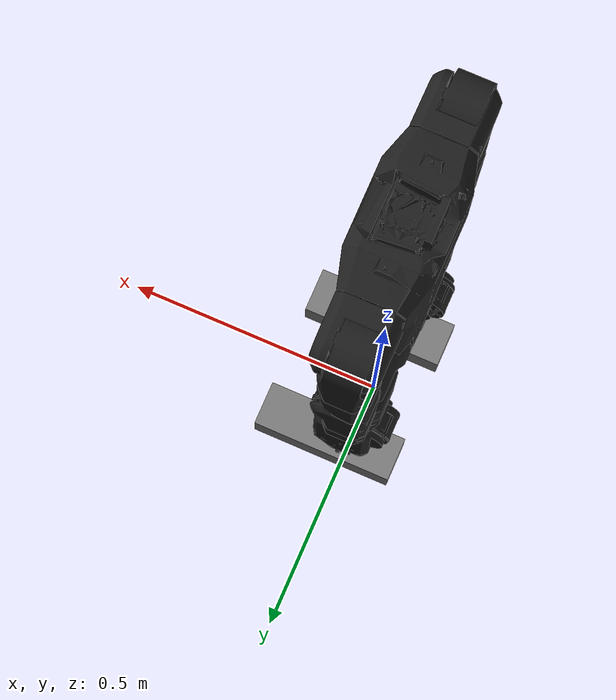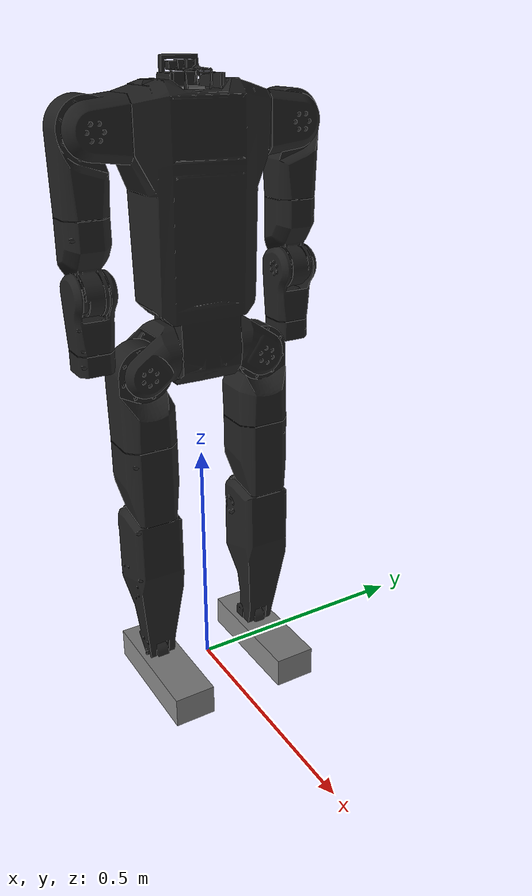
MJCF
<mujoco model="assy_forurdf">
  <default>
    <default class="robot">
      <default class="robstride_03">
        <joint armature="0.02" frictionloss="0.2" actuatorfrcrange="-60.0 60.0" />
        <motor ctrlrange="-60.0 60.0" />
      </default>
      <default class="robstride_02">
        <joint armature="0.0042" frictionloss="0.1" actuatorfrcrange="-17.0 17.0" />
        <motor ctrlrange="-17.0 17.0" />
      </default>
      <default class="robstride_04">
        <joint armature="0.04" frictionloss="0.2" actuatorfrcrange="-120.0 120.0" />
        <motor ctrlrange="-120.0 120.0" />
      </default>
      <default class="robstride_00">
        <joint armature="0.001" frictionloss="0.1" actuatorfrcrange="-14.0 14.0" />
        <motor ctrlrange="-14.0 14.0" />
      </default>
      <default class="visual">
        <geom material="visualgeom" contype="0" conaffinity="0" group="2" />
      </default>
      <default class="collision">
        <geom material="collision_material" condim="3" contype="0" conaffinity="1" priority="1" group="1" solref="0.02 0.8" solimp="0.98 0.99 0.1" friction="0.64 0.02 0.01" />
      </default>
    </default>
    <mesh maxhullvert="64" />
  </default>

  <compiler angle="radian" />

  <asset>
    <material name="green_material" rgba="0 1 0 1" />
    <material name="base_material" rgba="1 0 0 1" />
    <material name="torso_material" rgba="0.121569 0.121569 0.121569 1" />
    <material name="imu_material" rgba="0.498039 0.498039 0.498039 1" />
    <material name="default_material" rgba="0.7 0.7 0.7 1" />
    <material name="collision_material" rgba="1.0 0.28 0.1 0.9" />
    <mesh name="torso.stl" file="meshes/KD_D_101L_L_Hip_Static.stl" />
    <mesh name="KD_D_102L_L_Hip_Yoke_Drive.stl" file="meshes/KD_D_102L_L_Hip_Yoke_Drive.stl" />
    <mesh name="L_Hip_Roll_RS03.stl" file="meshes/L_Hip_Roll_RS03.stl" />
    <mesh name="KD_D_301L_L_Femur_Lower_Drive.stl" file="meshes/KD_D_301L_L_Femur_Lower_Drive.stl" />
    <mesh name="KD_D_401L_L_Shin_Drive.stl" file="meshes/KD_D_401L_L_Shin_Drive.stl" />
    <mesh name="LFootBushing_GPF_1517_12_collision.stl" file="meshes/LFootBushing_GPF_1517_12_collision.stl" />
    <mesh name="LFootBushing_GPF_1517_12.stl" file="meshes/LFootBushing_GPF_1517_12.stl" />
    <mesh name="KD_D_102R.stl" file="meshes/KD_D_102R.stl" />
    <mesh name="L_Hip_Roll_RS03_2.stl" file="meshes/L_Hip_Roll_RS03_2.stl" />
    <mesh name="KD_D_301R.stl" file="meshes/KD_D_301R.stl" />
    <mesh name="KD_D_401R.stl" file="meshes/KD_D_401R.stl" />
    <mesh name="RFootBushing_GPF_1517_12_collision.stl" file="meshes/RFootBushing_GPF_1517_12_collision.stl" />
    <mesh name="RFootBushing_GPF_1517_12.stl" file="meshes/RFootBushing_GPF_1517_12.stl" />
    <mesh name="KC_C_101R_ShldYokeDrive.stl" file="meshes/KC_C_101R_ShldYokeDrive.stl" />
    <mesh name="RS03_3.stl" file="meshes/RS03_3.stl" />
    <mesh name="KC_C_202R.stl" file="meshes/KC_C_202R.stl" />
    <mesh name="KC_C_401R_R_UpForearmDrive.stl" file="meshes/KC_C_401R_R_UpForearmDrive.stl" />
    <mesh name="PRT0001.stl" file="meshes/PRT0001.stl" />
    <mesh name="KD_C_101L_ShldYokeDrive.stl" file="meshes/KD_C_101L_ShldYokeDrive.stl" />
    <mesh name="RS03_4.stl" file="meshes/RS03_4.stl" />
    <mesh name="KD_C_301L_LowerBicepDrive.stl" file="meshes/KD_C_301L_LowerBicepDrive.stl" />
    <mesh name="KC_C_401L_Up_Forearm_Drive.stl" file="meshes/KC_C_401L_Up_Forearm_Drive.stl" />
    <mesh name="PRT0001_2.stl" file="meshes/PRT0001_2.stl" />
    <mesh name="imu.stl" file="meshes/imu.stl" />
  </asset>

  <worldbody>
    <body name="base" pos="0.00000000 0.00000000 0.76264403" quat="1 0 0 0" childclass="robot">
      <freejoint name="floating_base" />
      <geom name="base_visual" pos="0 0 0" quat="0.7071054825112363 0.0 0.0 0.7071080798594735" material="base_material" type="sphere" size="0.01" class="visual" />
      <!-- the torso origin out of the onshape to urdf exporter is wrong so we must fix it manually -->
      <body name="torso" pos="0 0.025888 0" quat="0.7071054825112363 0.0 0.0 0.7071080798594735">
        <geom name="torso_origin" pos="0 0 0" quat="1 0 0 0" class="visual" type="sphere" size="0.01" material="green_material" />
        <inertial pos="-0.025920 0.003286 0.170540" quat="1.0 0.0 0.0 0.0" mass="12.606875" diaginertia="0.369404 0.398554 0.05807" />
        <geom name="torso_visual" pos="0 0 0" quat="1.0 0.0 0.0 0.0" material="torso_material" type="mesh" mesh="torso.stl" class="visual" />
        <body name="KD_D_102L_L_Hip_Yoke_Drive" pos="0.030112 0.000852 -0.027644" quat="0.5000001633974483 -0.4999999999999733 -0.49999983660255165 0.4999999999999733">
          <joint name="dof_left_hip_pitch_04" type="hinge" ref="0.0" class="robstride_04" range="-1.047198 2.216568" axis="0 0 1" />
          <inertial pos="-0.004258 0.005667 -0.040380" quat="1.0 0.0 0.0 0.0" mass="0.550354" diaginertia="0.00093 0.001251 0.001328" />
          <geom name="KD_D_102L_L_Hip_Yoke_Drive_visual" pos="0 0 0" quat="1.0 0.0 0.0 0.0" material="torso_material" type="mesh" mesh="KD_D_102L_L_Hip_Yoke_Drive.stl" class="visual" />
          <body name="L_Hip_Roll_RS03" pos="-0.028250 0.030000 -0.071000" quat="-1.2247452309842457e-07 0.7071068967259713 1.22474483074382e-07 0.7071066656470838">
            <joint name="dof_left_hip_roll_03" type="hinge" ref="0.0" class="robstride_03" range="-0.209440 2.268928" axis="0 0 -1" />
            <inertial pos="-0.000136 -0.059376 0.026066" quat="1.0 0.0 0.0 0.0" mass="2.396969" diaginertia="0.01035 0.003224 0.010755" />
            <geom name="L_Hip_Roll_RS03_visual" pos="0 0 0" quat="1.0 0.0 0.0 0.0" material="torso_material" type="mesh" mesh="L_Hip_Roll_RS03.stl" class="visual" />
            <body name="KD_D_301L_L_Femur_Lower_Drive" pos="0 -0.143000 0.025250" quat="-1.2247452309842457e-07 -1.22474483074382e-07 -0.7071066656470838 -0.7071068967259713">
              <joint name="dof_left_hip_yaw_03" type="hinge" ref="0.0" class="robstride_03" range="-1.570796 1.570796" axis="0 0 1" />
              <inertial pos="0.001576 0.013392 -0.172799" quat="1.0 0.0 0.0 0.0" mass="2.349254" diaginertia="0.015361 0.013924 0.004011" />
              <geom name="KD_D_301L_L_Femur_Lower_Drive_visual" pos="0 0 0" quat="1.0 0.0 0.0 0.0" material="torso_material" type="mesh" mesh="KD_D_301L_L_Femur_Lower_Drive.stl" class="visual" />
              <body name="KD_D_401L_L_Shin_Drive" pos="-0.021000 0.021000 -0.212000" quat="0.5000001633974483 0.4999999999999733 0.49999983660255165 0.4999999999999733">
                <joint name="dof_left_knee_04" type="hinge" ref="0.0" class="robstride_04" range="0 2.705260" axis="0 0 1" />
                <inertial pos="-0.024116 -0.104308 0.018559" quat="1.0 0.0 0.0 0.0" mass="1.684707" diaginertia="0.014785 0.002991 0.014664" />
                <geom name="KD_D_401L_L_Shin_Drive_visual" pos="0 0 0" quat="1.0 0.0 0.0 0.0" material="torso_material" type="mesh" mesh="KD_D_401L_L_Shin_Drive.stl" class="visual" />
                <body name="LFootBushing_GPF_1517_12" pos="-0.030000 -0.290000 0.000950" quat="-1.7320510330969933e-07 0.999999999999985 0.0 -0.0">
                  <joint name="dof_left_ankle_02" type="hinge" ref="0.0" class="robstride_02" range="-1.134464 0.261799" axis="0 0 -1" />
                  <inertial pos="-0.016549 0.031142 -0.012943" quat="1.0 0.0 0.0 0.0" mass="0.608966" diaginertia="0.000377 0.00194 0.001893" />
                  <geom name="LFootBushing_GPF_1517_12_visual" pos="0 0 0" quat="1.0 0.0 0.0 0.0" material="torso_material" type="mesh" mesh="LFootBushing_GPF_1517_12.stl" class="visual" />
                  <geom name="LFootBushing_GPF_1517_12_collision_capsule_0" type="capsule" quat="1.000000 0.000000 0.000000 0.000000" fromto="-0.1017 0.038000 -0.030886 0.055821 0.038000 -0.030886" size="0.020000" material="collision_material" class="collision" />
                  <geom name="LFootBushing_GPF_1517_12_visual_capsule_0" type="capsule" quat="1.000000 0.000000 0.000000 0.000000" fromto="-0.1017 0.038000 -0.030886 0.055821 0.038000 -0.030886" size="0.020000" material="torso_material" class="visual" />
                  <geom name="LFootBushing_GPF_1517_12_collision_capsule_1" type="capsule" quat="1.000000 0.000000 0.000000 0.000000" fromto="-0.1127 0.038000 0.000954 0.055821 0.038000 0.000954" size="0.020000" material="collision_material" class="collision" />
                  <geom name="LFootBushing_GPF_1517_12_visual_capsule_1" type="capsule" quat="1.000000 0.000000 0.000000 0.000000" fromto="-0.1127 0.038000 0.000954 0.055821 0.038000 0.000954" size="0.020000" material="torso_material" class="visual" />
                  <site name="left_foot" size="0.138 0.032 0.043" pos="-0.0290 0.038 -0.0150" type="box" />
                </body>
              </body>
            </body>
          </body>
        </body>
        <body name="KD_D_102R" pos="-0.081888 0.000852 -0.027644" quat="0.5000001633974483 0.4999999999999733 0.49999983660255165 0.4999999999999733">
          <joint name="dof_right_hip_pitch_04" type="hinge" ref="0.0" class="robstride_04" range="-2.216568 1.047198" axis="0 0 1" />
          <inertial pos="-0.004258 -0.005667 -0.040379" quat="1.0 0.0 0.0 0.0" mass="0.550361" diaginertia="0.00093 0.001251 0.001328" />
          <geom name="KD_D_102R_visual" pos="0 0 0" quat="1.0 0.0 0.0 0.0" material="torso_material" type="mesh" mesh="KD_D_102R.stl" class="visual" />
          <body name="L_Hip_Roll_RS03_2" pos="-0.028250 -0.030000 -0.071000" quat="0.7071068967259818 0.0 -0.7071066656470943 0.0">
            <joint name="dof_right_hip_roll_03" type="hinge" ref="0.0" class="robstride_03" range="-2.268928 0.209440" axis="0 0 1" />
            <inertial pos="-0.000137 -0.059376 -0.026067" quat="1.0 0.0 0.0 0.0" mass="2.396917" diaginertia="0.01035 0.003224 0.010755" />
            <geom name="L_Hip_Roll_RS03_2_visual" pos="0 0 0" quat="1.0 0.0 0.0 0.0" material="torso_material" type="mesh" mesh="L_Hip_Roll_RS03_2.stl" class="visual" />
            <body name="KD_D_301R" pos="0 -0.143000 -0.025250" quat="0.7071068967259818 -0.7071066656470943 0.0 0.0">
              <joint name="dof_right_hip_yaw_03" type="hinge" ref="0.0" class="robstride_03" range="-1.570796 1.570796" axis="0 0 1" />
              <inertial pos="-0.001577 0.013392 -0.172799" quat="1.0 0.0 0.0 0.0" mass="2.349261" diaginertia="0.015362 0.013924 0.004011" />
              <geom name="KD_D_301R_visual" pos="0 0 0" quat="1.0 0.0 0.0 0.0" material="torso_material" type="mesh" mesh="KD_D_301R.stl" class="visual" />
              <body name="KD_D_401R" pos="0.021000 0.021000 -0.212000" quat="0.5000001633974483 0.4999999999999733 0.49999983660255165 0.4999999999999733">
                <joint name="dof_right_knee_04" type="hinge" ref="0.0" class="robstride_04" range="-2.705260 0" axis="0 0 -1" />
                <inertial pos="-0.024117 -0.104310 -0.018558" quat="1.0 0.0 0.0 0.0" mass="1.684717" diaginertia="0.014785 0.002991 0.014664" />
                <geom name="KD_D_401R_visual" pos="0 0 0" quat="1.0 0.0 0.0 0.0" material="torso_material" type="mesh" mesh="KD_D_401R.stl" class="visual" />
                <body name="RFootBushing_GPF_1517_12" pos="-0.030000 -0.290000 -0.000950" quat="1.0 0.0 0.0 0.0">
                  <joint name="dof_right_ankle_02" type="hinge" ref="0.0" class="robstride_02" range="-0.261799 1.134464" axis="0 0 -1" />
                  <inertial pos="-0.016546 -0.031136 -0.012942" quat="1.0 0.0 0.0 0.0" mass="0.608742" diaginertia="0.000377 0.001939 0.001892" />
                  <geom name="RFootBushing_GPF_1517_12_visual" pos="0 0 0" quat="1.0 0.0 0.0 0.0" material="torso_material" type="mesh" mesh="RFootBushing_GPF_1517_12.stl" class="visual" />
                  <geom name="RFootBushing_GPF_1517_12_collision_capsule_0" type="capsule" quat="1.000000 0.000000 0.000000 0.000000" fromto="-0.1017 -0.038000 -0.030886 0.055821 -0.038000 -0.030886" size="0.020000" material="collision_material" class="collision" />
                  <geom name="RFootBushing_GPF_1517_12_visual_capsule_0" type="capsule" quat="1.000000 0.000000 0.000000 0.000000" fromto="-0.1017 -0.038000 -0.030886 0.055821 -0.038000 -0.030886" size="0.020000" material="torso_material" class="visual" />
                  <geom name="RFootBushing_GPF_1517_12_collision_capsule_1" type="capsule" quat="1.000000 0.000000 0.000000 0.000000" fromto="-0.1127 -0.038000 0.000954 0.055821 -0.038000 0.000954" size="0.020000" material="collision_material" class="collision" />
                  <geom name="RFootBushing_GPF_1517_12_visual_capsule_1" type="capsule" quat="1.000000 0.000000 0.000000 0.000000" fromto="-0.1127 -0.038000 0.000954 0.055821 -0.038000 0.000954" size="0.020000" material="torso_material" class="visual" />
                  <site name="right_foot" size="0.138 0.032 0.043" pos="-0.0290 -0.038 -0.0150" type="box" />
                </body>
              </body>
            </body>
          </body>
        </body>
        <body name="KC_C_101R_ShldYokeDrive" pos="-0.146888 0.000852 0.382856" quat="0.7071068967259818 0.0 -0.7071066656470943 0.0">
          <joint name="dof_right_shoulder_pitch_03" type="hinge" ref="0.0" class="robstride_03" range="-3.490658 1.047198" axis="0 0 -1" />
          <inertial pos="0.003158 -0.007737 0.047375" quat="1.0 0.0 0.0 0.0" mass="0.569870" diaginertia="0.001409 0.001159 0.001309" />
          <geom name="KC_C_101R_ShldYokeDrive_visual" pos="0 0 0" quat="1.0 0.0 0.0 0.0" material="torso_material" type="mesh" mesh="KC_C_101R_ShldYokeDrive.stl" class="visual" />
          <body name="RS03_3" pos="0 -0.024250 0.080000" quat="0.5000001633974483 0.4999999999999733 0.4999999999999733 -0.49999983660255165">
            <joint name="dof_right_shoulder_roll_03" type="hinge" ref="0.0" class="robstride_03" range="-1.658063 0.436332" axis="0 0 1" />
            <inertial pos="-0.004909 -0.041175 -0.029409" quat="1.0 0.0 0.0 0.0" mass="1.789232" diaginertia="0.007176 0.001972 0.007602" />
            <geom name="RS03_3_visual" pos="0 0 0" quat="1.0 0.0 0.0 0.0" material="torso_material" type="mesh" mesh="RS03_3.stl" class="visual" />
            <body name="KC_C_202R" pos="-0.013000 -0.142500 -0.031670" quat="0.7071068967259818 -0.7071066656470943 0.0 0.0">
              <joint name="dof_right_shoulder_yaw_02" type="hinge" ref="0.0" class="robstride_02" range="-1.671886 1.671886" axis="0 0 1" />
              <inertial pos="0.003135 -0.003955 -0.099599" quat="1.0 0.0 0.0 0.0" mass="0.753224" diaginertia="0.002457 0.002305 0.000727" />
              <geom name="KC_C_202R_visual" pos="0 0 0" quat="1.0 0.0 0.0 0.0" material="torso_material" type="mesh" mesh="KC_C_202R.stl" class="visual" />
              <body name="KC_C_401R_R_UpForearmDrive" pos="0.019000 -0.010000 -0.137000" quat="0.5000001633974483 -0.4999999999999733 -0.49999983660255165 0.4999999999999733">
                <joint name="dof_right_elbow_02" type="hinge" ref="0.0" class="robstride_02" range="0 2.478368" axis="0 0 1" />
                <inertial pos="0.015853 0.061198 0.015613" quat="1.0 0.0 0.0 0.0" mass="0.641859" diaginertia="0.001302 0.000701 0.001278" />
                <geom name="KC_C_401R_R_UpForearmDrive_visual" pos="0 0 0" quat="1.0 0.0 0.0 0.0" material="torso_material" type="mesh" mesh="KC_C_401R_R_UpForearmDrive.stl" class="visual" />
                <body name="PRT0001" pos="0.017350 0.103000 0.018000" quat="0.5000001633974483 -0.4999999999999733 0.4999999999999733 0.49999983660255165">
                  <joint name="dof_right_wrist_00" type="hinge" ref="0.0" class="robstride_00" range="-1.378810 1.378810" axis="0 0 -1" />
                  <inertial pos="0.000357 0.000031 0.027390" quat="1.0 0.0 0.0 0.0" mass="0.462356" diaginertia="0.000274 0.000266 0.000406" />
                  <geom name="PRT0001_visual" pos="0 0 0" quat="1.0 0.0 0.0 0.0" material="torso_material" type="mesh" mesh="PRT0001.stl" class="visual" />
                </body>
              </body>
            </body>
          </body>
        </body>
        <body name="KD_C_101L_ShldYokeDrive" pos="0.095112 0.000852 0.382856" quat="0.7071068967259818 0.0 0.7071066656470943 0.0">
          <joint name="dof_left_shoulder_pitch_03" type="hinge" ref="0.0" class="robstride_03" range="-1.047198 3.490658" axis="0 0 -1" />
          <inertial pos="-0.003158 -0.007737 0.047374" quat="1.0 0.0 0.0 0.0" mass="0.569863" diaginertia="0.001409 0.001159 0.001309" />
          <geom name="KD_C_101L_ShldYokeDrive_visual" pos="0 0 0" quat="1.0 0.0 0.0 0.0" material="torso_material" type="mesh" mesh="KD_C_101L_ShldYokeDrive.stl" class="visual" />
          <body name="RS03_4" pos="0 -0.024250 0.080000" quat="0.5000001633974483 0.4999999999999733 -0.4999999999999733 0.49999983660255165">
            <joint name="dof_left_shoulder_roll_03" type="hinge" ref="0.0" class="robstride_03" range="-0.436332 1.658063" axis="0 0 1" />
            <inertial pos="0.004876 -0.041173 -0.029352" quat="1.0 0.0 0.0 0.0" mass="1.789191" diaginertia="0.007175 0.001972 0.007602" />
            <geom name="RS03_4_visual" pos="0 0 0" quat="1.0 0.0 0.0 0.0" material="torso_material" type="mesh" mesh="RS03_4.stl" class="visual" />
            <body name="KD_C_301L_LowerBicepDrive" pos="0.013000 -0.142500 -0.030750" quat="0.7071068967259818 -0.7071066656470943 0.0 0.0">
              <joint name="dof_left_shoulder_yaw_02" type="hinge" ref="0.0" class="robstride_02" range="-1.671886 1.671886" axis="0 0 1" />
              <inertial pos="0.000333 -0.002948 -0.095705" quat="1.0 0.0 0.0 0.0" mass="0.866827" diaginertia="0.002953 0.002777 0.000923" />
              <geom name="KD_C_301L_LowerBicepDrive_visual" pos="0 0 0" quat="1.0 0.0 0.0 0.0" material="torso_material" type="mesh" mesh="KD_C_301L_LowerBicepDrive.stl" class="visual" />
              <body name="KC_C_401L_Up_Forearm_Drive" pos="-0.019000 -0.010000 -0.137000" quat="0.5000001633974483 0.4999999999999733 0.49999983660255165 0.4999999999999733">
                <joint name="dof_left_elbow_02" type="hinge" ref="0.0" class="robstride_02" range="-2.478368 0" axis="0 0 1" />
                <inertial pos="0.015853 -0.061197 0.015921" quat="1.0 0.0 0.0 0.0" mass="0.641873" diaginertia="0.001303 0.000701 0.001278" />
                <geom name="KC_C_401L_Up_Forearm_Drive_visual" pos="0 0 0" quat="1.0 0.0 0.0 0.0" material="torso_material" type="mesh" mesh="KC_C_401L_Up_Forearm_Drive.stl" class="visual" />
                <body name="PRT0001_2" pos="0.017350 -0.103000 0.018000" quat="0.5000001633974483 0.4999999999999733 -0.4999999999999733 0.49999983660255165">
                  <joint name="dof_left_wrist_00" type="hinge" ref="0.0" class="robstride_00" range="-1.378810 1.378810" axis="0 0 -1" />
                  <inertial pos="-0.000357 -0.000031 0.027390" quat="1.0 0.0 0.0 0.0" mass="0.462356" diaginertia="0.000274 0.000266 0.000406" />
                  <geom name="PRT0001_2_visual" pos="0 0 0" quat="1.0 0.0 0.0 0.0" material="torso_material" type="mesh" mesh="PRT0001_2.stl" class="visual" />
                </body>
              </body>
            </body>
          </body>
        </body>
        <body name="imu" pos="-0.025422 -0.001897 0.440523" quat="1.0 0.0 0.0 0.0">
          <inertial pos="-0.003012 0 0.002999" quat="1.0 0.0 0.0 0.0" mass="0.005700" diaginertia="1e-06 1e-06 2e-06" />
          <geom name="imu_visual" pos="0 0 0" quat="1.0 0.0 0.0 0.0" material="imu_material" type="mesh" mesh="imu.stl" class="visual" />
          <site name="imu_site" quat="1.0 0.0 0.0 0.0" pos="0.0 0.0 0.0" />
        </body>
      </body>
      <site name="base_site" pos="0.0 0.0 0.0" quat="1 0 0 0" />
      <camera name="front_camera" mode="track" fovy="90.0" quat="4.329780281177467e-17 4.329780281177466e-17 0.7071067811865475 0.7071067811865476" pos="0.0 2.0 0.5" />
      <camera name="side_camera" mode="track" fovy="90.0" quat="-0.5 -0.4999999999999999 0.5 0.5000000000000001" pos="-2.0 0.0 0.5" />
    </body>
  </worldbody>

  <actuator>
    <motor name="dof_left_hip_pitch_04_ctrl" joint="dof_left_hip_pitch_04" class="robstride_04" />
    <motor name="dof_left_hip_roll_03_ctrl" joint="dof_left_hip_roll_03" class="robstride_03" />
    <motor name="dof_left_hip_yaw_03_ctrl" joint="dof_left_hip_yaw_03" class="robstride_03" />
    <motor name="dof_left_knee_04_ctrl" joint="dof_left_knee_04" class="robstride_04" />
    <motor name="dof_left_ankle_02_ctrl" joint="dof_left_ankle_02" class="robstride_02" />
    <motor name="dof_right_hip_pitch_04_ctrl" joint="dof_right_hip_pitch_04" class="robstride_04" />
    <motor name="dof_right_hip_roll_03_ctrl" joint="dof_right_hip_roll_03" class="robstride_03" />
    <motor name="dof_right_hip_yaw_03_ctrl" joint="dof_right_hip_yaw_03" class="robstride_03" />
    <motor name="dof_right_knee_04_ctrl" joint="dof_right_knee_04" class="robstride_04" />
    <motor name="dof_right_ankle_02_ctrl" joint="dof_right_ankle_02" class="robstride_02" />
    <motor name="dof_right_shoulder_pitch_03_ctrl" joint="dof_right_shoulder_pitch_03" class="robstride_03" />
    <motor name="dof_right_shoulder_roll_03_ctrl" joint="dof_right_shoulder_roll_03" class="robstride_03" />
    <motor name="dof_right_shoulder_yaw_02_ctrl" joint="dof_right_shoulder_yaw_02" class="robstride_02" />
    <motor name="dof_right_elbow_02_ctrl" joint="dof_right_elbow_02" class="robstride_02" />
    <motor name="dof_right_wrist_00_ctrl" joint="dof_right_wrist_00" class="robstride_00" />
    <motor name="dof_left_shoulder_pitch_03_ctrl" joint="dof_left_shoulder_pitch_03" class="robstride_03" />
    <motor name="dof_left_shoulder_roll_03_ctrl" joint="dof_left_shoulder_roll_03" class="robstride_03" />
    <motor name="dof_left_shoulder_yaw_02_ctrl" joint="dof_left_shoulder_yaw_02" class="robstride_02" />
    <motor name="dof_left_elbow_02_ctrl" joint="dof_left_elbow_02" class="robstride_02" />
    <motor name="dof_left_wrist_00_ctrl" joint="dof_left_wrist_00" class="robstride_00" />
  </actuator>

  <contact />

  <sensor>
    <framepos name="base_site_pos" objtype="site" objname="base_site" />
    <framequat name="base_site_quat" objtype="site" objname="base_site" />
    <framelinvel name="base_site_linvel" objtype="site" objname="base_site" />
    <frameangvel name="base_site_angvel" objtype="site" objname="base_site" />
    <velocimeter name="base_site_vel" site="base_site" />
    <accelerometer name="imu_acc" site="imu_site" noise="0.01" />
    <gyro name="imu_gyro" site="imu_site" noise="0.01" />
    <magnetometer name="imu_mag" site="imu_site" noise="0.05" />
    <framepos name="imu_site_pos" objtype="site" objname="imu_site" />
    <framequat name="imu_site_quat" objtype="site" objname="imu_site" />
    <framelinvel name="imu_site_linvel" objtype="site" objname="imu_site" />
    <frameangvel name="imu_site_angvel" objtype="site" objname="imu_site" />
    <velocimeter name="imu_site_vel" site="imu_site" />
    <force name="left_foot_force" site="left_foot" />
    <force name="right_foot_force" site="right_foot" />
    <touch name="left_foot_touch" site="left_foot" />
    <touch name="right_foot_touch" site="right_foot" />
  </sensor>
</mujoco>
